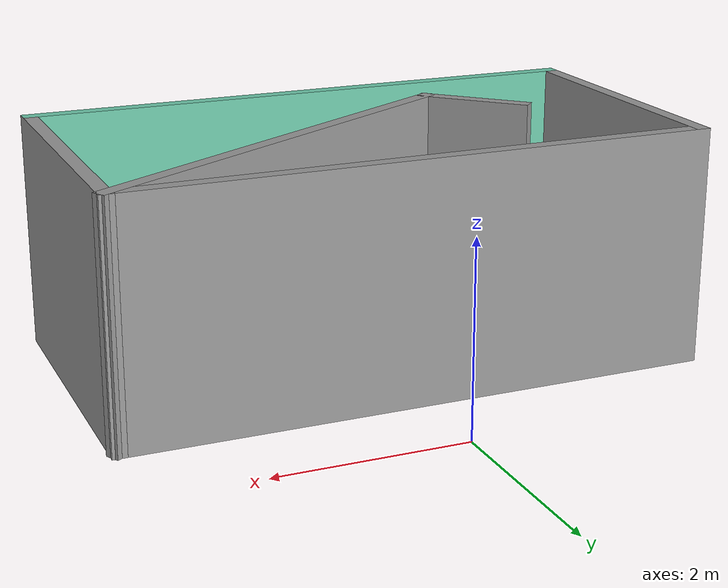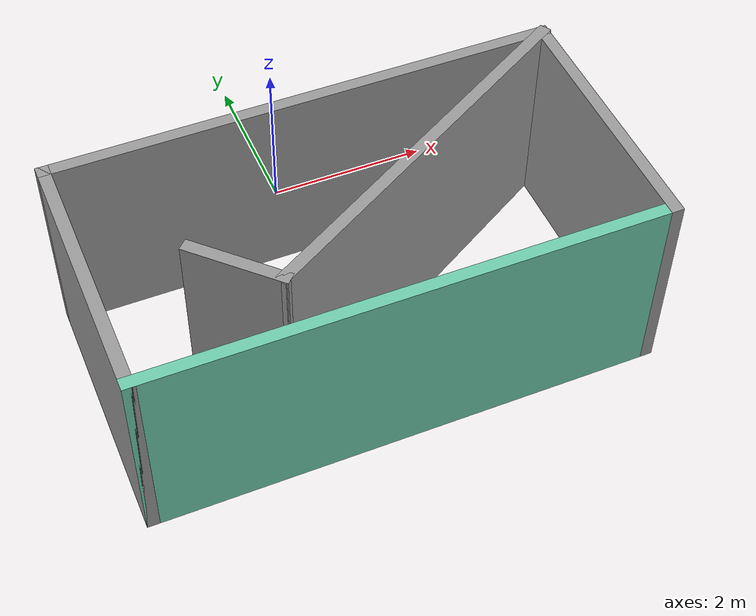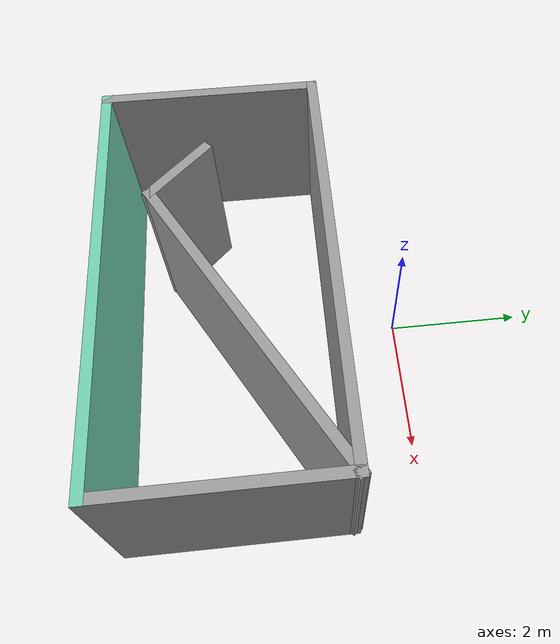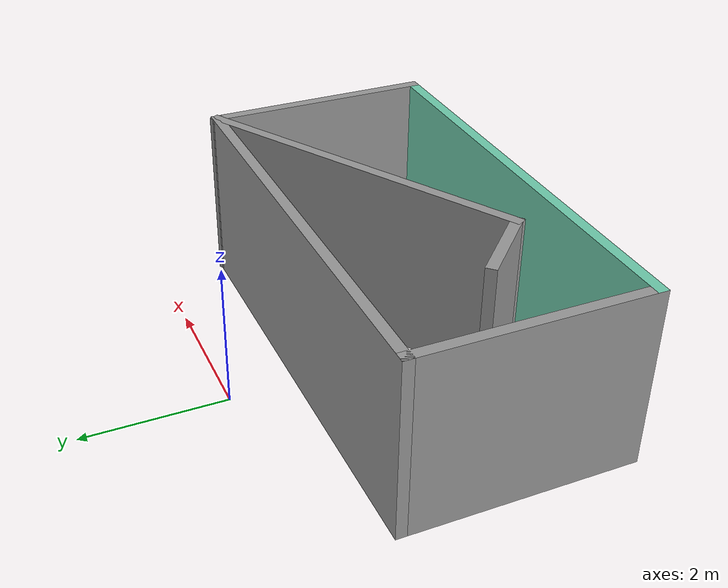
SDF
<?xml version='1.0'?>
<sdf version='1.7'>
  <model name='lab_walls'>
    <pose>0.073726 -2.0825 0 0 -0 0</pose>
    <link name='Wall_3'>
      <collision name='Wall_3_Collision'>
        <geometry>
          <box>
            <size>6.25 0.15 2.5</size>
          </box>
        </geometry>
        <pose>0 0 1.25 0 -0 0</pose>
      </collision>
      <visual name='Wall_3_Visual'>
        <pose>0 0 1.25 0 -0 0</pose>
        <geometry>
          <box>
            <size>6.25 0.15 2.5</size>
          </box>
        </geometry>
        <material>
          <script>
            <uri>file://media/materials/scripts/gazebo.material</uri>
            <name>Gazebo/Grey</name>
          </script>
          <ambient>1 1 1 1</ambient>
        </material>
        <meta>
          <layer>0</layer>
        </meta>
      </visual>
      <pose>-0.013726 1.0925 0 0 -0 3.14159</pose>
    </link>
    <link name='Wall_4'>
      <collision name='Wall_4_Collision'>
        <geometry>
          <box>
            <size>3.25 0.15 2.5</size>
          </box>
        </geometry>
        <pose>0 0 1.25 0 -0 0</pose>
      </collision>
      <visual name='Wall_4_Visual'>
        <pose>0 0 1.25 0 -0 0</pose>
        <geometry>
          <box>
            <size>3.25 0.15 2.5</size>
          </box>
        </geometry>
        <material>
          <script>
            <uri>file://media/materials/scripts/gazebo.material</uri>
            <name>Gazebo/Grey</name>
          </script>
          <ambient>1 1 1 1</ambient>
        </material>
        <meta>
          <layer>0</layer>
        </meta>
      </visual>
      <pose>-3.06373 -0.4575 0 0 -0 -1.5708</pose>
    </link>
    <link name='Wall_5'>
      <collision name='Wall_5_Collision'>
        <geometry>
          <box>
            <size>6.25 0.15 2.5</size>
          </box>
        </geometry>
        <pose>0 0 1.25 0 -0 0</pose>
      </collision>
      <visual name='Wall_5_Visual'>
        <pose>0 0 1.25 0 -0 0</pose>
        <geometry>
          <box>
            <size>6.25 0.15 2.5</size>
          </box>
        </geometry>
        <material>
          <script>
            <uri>file://media/materials/scripts/gazebo.material</uri>
            <name>Gazebo/Grey</name>
          </script>
          <ambient>0.435294 0.796078 0.67451 1</ambient>
        </material>
        <meta>
          <layer>0</layer>
        </meta>
      </visual>
      <pose>-0.013726 -2.0075 0 0 -0 0</pose>
    </link>
    <link name='Wall_6'>
      <collision name='Wall_6_Collision'>
        <geometry>
          <box>
            <size>3.25 0.15 2.5</size>
          </box>
        </geometry>
        <pose>0 0 1.25 0 -0 0</pose>
      </collision>
      <visual name='Wall_6_Visual'>
        <pose>0 0 1.25 0 -0 0</pose>
        <geometry>
          <box>
            <size>3.25 0.15 2.5</size>
          </box>
        </geometry>
        <material>
          <script>
            <uri>file://media/materials/scripts/gazebo.material</uri>
            <name>Gazebo/Grey</name>
          </script>
          <ambient>1 1 1 1</ambient>
        </material>
        <meta>
          <layer>0</layer>
        </meta>
      </visual>
      <pose>3.03627 -0.4575 0 0 -0 1.5708</pose>
    </link>
    <link name='Wall_7'>
      <collision name='Wall_7_Collision'>
        <geometry>
          <box>
            <size>5 0.15 2.5</size>
          </box>
        </geometry>
        <pose>0 0 1.25 0 -0 0</pose>
      </collision>
      <visual name='Wall_7_Visual'>
        <pose>0 0 1.25 0 -0 0</pose>
        <geometry>
          <box>
            <size>5 0.15 2.5</size>
          </box>
        </geometry>
        <material>
          <script>
            <uri>file://media/materials/scripts/gazebo.material</uri>
            <name>Gazebo/Grey</name>
          </script>
          <ambient>1 1 1 1</ambient>
        </material>
        <meta>
          <layer>0</layer>
        </meta>
      </visual>
      <pose>0.936163 -0.12 0 0 -0 -2.61799</pose>
    </link>
    <link name='Wall_8'>
      <collision name='Wall_8_Collision'>
        <geometry>
          <box>
            <size>1.25 0.15 2.5</size>
          </box>
        </geometry>
        <pose>0 0 1.25 0 -0 0</pose>
      </collision>
      <visual name='Wall_8_Visual'>
        <pose>0 0 1.25 0 -0 0</pose>
        <geometry>
          <box>
            <size>1.25 0.15 2.5</size>
          </box>
        </geometry>
        <material>
          <script>
            <uri>file://media/materials/scripts/gazebo.material</uri>
            <name>Gazebo/Grey</name>
          </script>
          <ambient>1 1 1 1</ambient>
        </material>
        <meta>
          <layer>0</layer>
        </meta>
      </visual>
      <pose>-1.55286 -0.943591 0 0 -0 2.35619</pose>
    </link>
    <static>1</static>
  </model>
</sdf>
